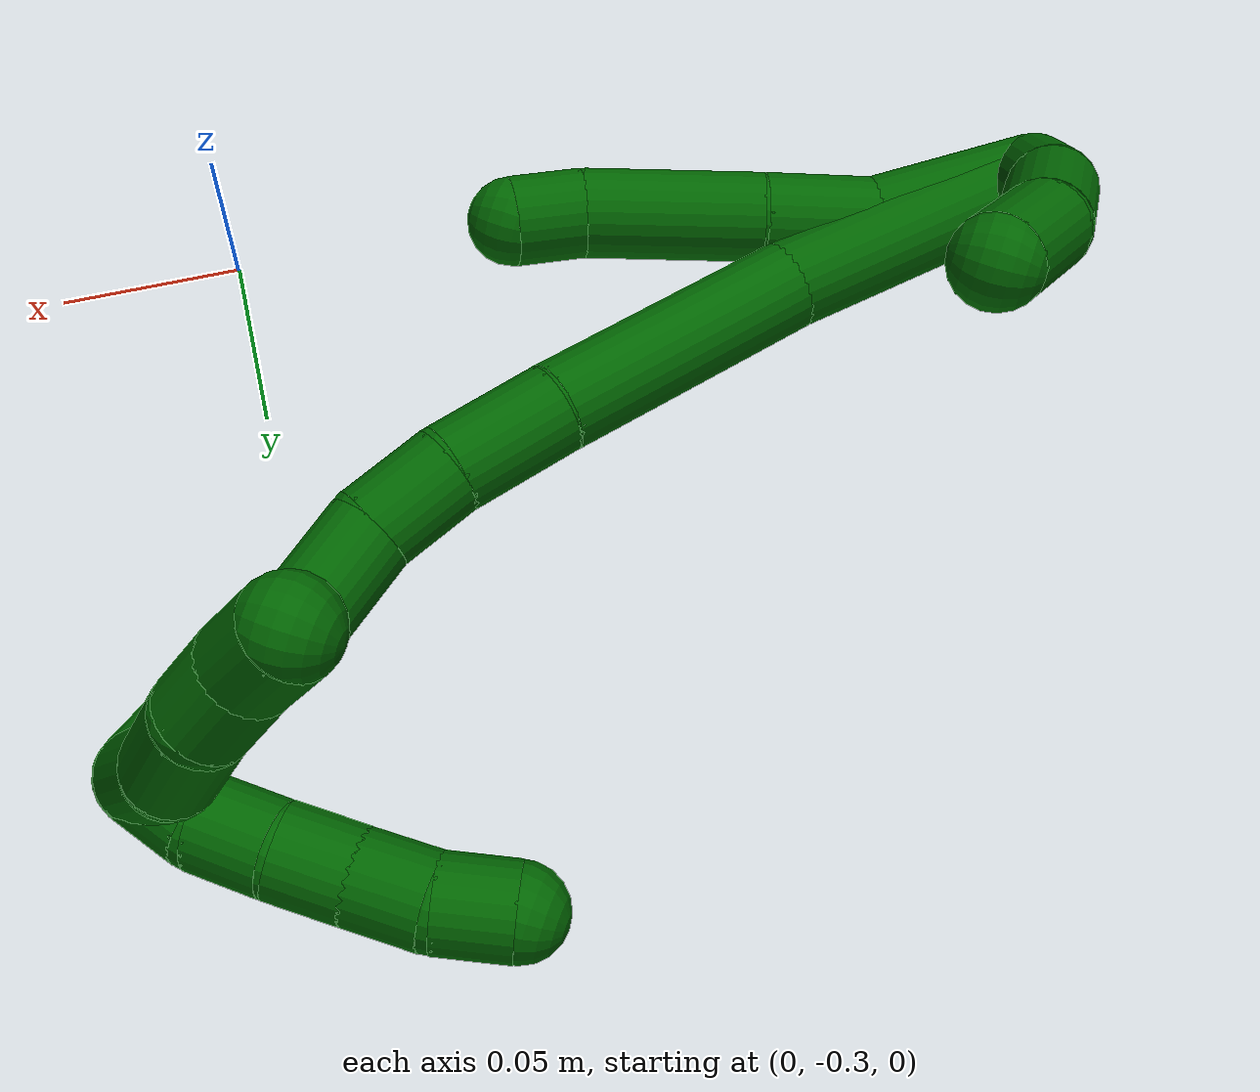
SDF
<sdf version="1.7">
 <world name="default">
  <model name="6">
   <static>0</static>
   <link name="6">
    <collision name="collision-cylinder-e_1_2_8">
     <pose>0.013785 -0.003809 0.019126 0.196598 0.615338 0.062652</pose>
     <geometry><cylinder><radius>0.0125</radius><length>0.047763</length></cylinder></geometry>
     <surface>
      <friction><ode><mu>1.16</mu><mu2>1.16</mu2><slip1>0</slip1><slip2>0</slip2></ode></friction>
      <contact><ode><kp>1e+06</kp><kd>1</kd><max_vel>0</max_vel><min_depth>0.001</min_depth></ode></contact>
     </surface>
    </collision>
    <visual name="visual-cylinder-e_1_2_8">
     <pose>0.013785 -0.003809 0.019126 0.196598 0.615338 0.062652</pose>
     <geometry><cylinder><radius>0.0125</radius><length>0.047763</length></cylinder></geometry>
     <material><ambient>0 0.392157 0.003922 1</ambient></material>
    </visual>
    <collision name="collision-cylinder-e_2_8_9">
     <pose>0.033226 -0.007453 0.052964 -0.011257 0.366955 -0.002089</pose>
     <geometry><cylinder><radius>0.0125</radius><length>0.031527</length></cylinder></geometry>
     <surface>
      <friction><ode><mu>1.16</mu><mu2>1.16</mu2><slip1>0</slip1><slip2>0</slip2></ode></friction>
      <contact><ode><kp>1e+06</kp><kd>1</kd><max_vel>0</max_vel><min_depth>0.001</min_depth></ode></contact>
     </surface>
    </collision>
    <visual name="visual-cylinder-e_2_8_9">
     <pose>0.033226 -0.007453 0.052964 -0.011257 0.366955 -0.002089</pose>
     <geometry><cylinder><radius>0.0125</radius><length>0.031527</length></cylinder></geometry>
     <material><ambient>0 0.392157 0.003922 1</ambient></material>
    </visual>
    <collision name="collision-cylinder-e_3_9_10">
     <pose>0.04677 -0.008749 0.09154 0.061189 0.318684 0.009836</pose>
     <geometry><cylinder><radius>0.0125</radius><length>0.050351</length></cylinder></geometry>
     <surface>
      <friction><ode><mu>1.16</mu><mu2>1.16</mu2><slip1>0</slip1><slip2>0</slip2></ode></friction>
      <contact><ode><kp>1e+06</kp><kd>1</kd><max_vel>0</max_vel><min_depth>0.001</min_depth></ode></contact>
     </surface>
    </collision>
    <visual name="visual-cylinder-e_3_9_10">
     <pose>0.04677 -0.008749 0.09154 0.061189 0.318684 0.009836</pose>
     <geometry><cylinder><radius>0.0125</radius><length>0.050351</length></cylinder></geometry>
     <material><ambient>0 0.392157 0.003922 1</ambient></material>
    </visual>
    <collision name="collision-cylinder-e_4_10_6">
     <pose>0.060021 -0.010442 0.124052 0.026702 0.554901 0.007605</pose>
     <geometry><cylinder><radius>0.0125</radius><length>0.020359</length></cylinder></geometry>
     <surface>
      <friction><ode><mu>1.16</mu><mu2>1.16</mu2><slip1>0</slip1><slip2>0</slip2></ode></friction>
      <contact><ode><kp>1e+06</kp><kd>1</kd><max_vel>0</max_vel><min_depth>0.001</min_depth></ode></contact>
     </surface>
    </collision>
    <visual name="visual-cylinder-e_4_10_6">
     <pose>0.060021 -0.010442 0.124052 0.026702 0.554901 0.007605</pose>
     <geometry><cylinder><radius>0.0125</radius><length>0.020359</length></cylinder></geometry>
     <material><ambient>0 0.392157 0.003922 1</ambient></material>
    </visual>
    <collision name="collision-cylinder-e_1_2_11">
     <pose>0.012114 0.009161 -0.002816 -1.86903 0.901474 -1.15989</pose>
     <geometry><cylinder><radius>0.0125</radius><length>0.030894</length></cylinder></geometry>
     <surface>
      <friction><ode><mu>1.16</mu><mu2>1.16</mu2><slip1>0</slip1><slip2>0</slip2></ode></friction>
      <contact><ode><kp>1e+06</kp><kd>1</kd><max_vel>0</max_vel><min_depth>0.001</min_depth></ode></contact>
     </surface>
    </collision>
    <visual name="visual-cylinder-e_1_2_11">
     <pose>0.012114 0.009161 -0.002816 -1.86903 0.901474 -1.15989</pose>
     <geometry><cylinder><radius>0.0125</radius><length>0.030894</length></cylinder></geometry>
     <material><ambient>0 0.392157 0.003922 1</ambient></material>
    </visual>
    <collision name="collision-cylinder-e_2_11_12">
     <pose>0.040582 0.026614 -0.005658 -1.57393 1.10155 -1.10434</pose>
     <geometry><cylinder><radius>0.0125</radius><length>0.036672</length></cylinder></geometry>
     <surface>
      <friction><ode><mu>1.16</mu><mu2>1.16</mu2><slip1>0</slip1><slip2>0</slip2></ode></friction>
      <contact><ode><kp>1e+06</kp><kd>1</kd><max_vel>0</max_vel><min_depth>0.001</min_depth></ode></contact>
     </surface>
    </collision>
    <visual name="visual-cylinder-e_2_11_12">
     <pose>0.040582 0.026614 -0.005658 -1.57393 1.10155 -1.10434</pose>
     <geometry><cylinder><radius>0.0125</radius><length>0.036672</length></cylinder></geometry>
     <material><ambient>0 0.392157 0.003922 1</ambient></material>
    </visual>
    <collision name="collision-cylinder-e_3_12_5">
     <pose>0.07152 0.040497 -0.00132 -0.908121 1.11811 -0.592727</pose>
     <geometry><cylinder><radius>0.0125</radius><length>0.032434</length></cylinder></geometry>
     <surface>
      <friction><ode><mu>1.16</mu><mu2>1.16</mu2><slip1>0</slip1><slip2>0</slip2></ode></friction>
      <contact><ode><kp>1e+06</kp><kd>1</kd><max_vel>0</max_vel><min_depth>0.001</min_depth></ode></contact>
     </surface>
    </collision>
    <visual name="visual-cylinder-e_3_12_5">
     <pose>0.07152 0.040497 -0.00132 -0.908121 1.11811 -0.592727</pose>
     <geometry><cylinder><radius>0.0125</radius><length>0.032434</length></cylinder></geometry>
     <material><ambient>0 0.392157 0.003922 1</ambient></material>
    </visual>
    <collision name="collision-cylinder-e_1_2_13">
     <pose>0.028169 -0.006351 0.027408 0.227702 0.786014 0.094738</pose>
     <geometry><cylinder><radius>0.0125</radius><length>0.079625</length></cylinder></geometry>
     <surface>
      <friction><ode><mu>1.16</mu><mu2>1.16</mu2><slip1>0</slip1><slip2>0</slip2></ode></friction>
      <contact><ode><kp>1e+06</kp><kd>1</kd><max_vel>0</max_vel><min_depth>0.001</min_depth></ode></contact>
     </surface>
    </collision>
    <visual name="visual-cylinder-e_1_2_13">
     <pose>0.028169 -0.006351 0.027408 0.227702 0.786014 0.094738</pose>
     <geometry><cylinder><radius>0.0125</radius><length>0.079625</length></cylinder></geometry>
     <material><ambient>0 0.392157 0.003922 1</ambient></material>
    </visual>
    <collision name="collision-cylinder-e_2_13_14">
     <pose>0.088426 -0.014266 0.077257 0.069598 0.959368 0.036216</pose>
     <geometry><cylinder><radius>0.0125</radius><length>0.078375</length></cylinder></geometry>
     <surface>
      <friction><ode><mu>1.16</mu><mu2>1.16</mu2><slip1>0</slip1><slip2>0</slip2></ode></friction>
      <contact><ode><kp>1e+06</kp><kd>1</kd><max_vel>0</max_vel><min_depth>0.001</min_depth></ode></contact>
     </surface>
    </collision>
    <visual name="visual-cylinder-e_2_13_14">
     <pose>0.088426 -0.014266 0.077257 0.069598 0.959368 0.036216</pose>
     <geometry><cylinder><radius>0.0125</radius><length>0.078375</length></cylinder></geometry>
     <material><ambient>0 0.392157 0.003922 1</ambient></material>
    </visual>
    <collision name="collision-cylinder-e_3_14_15">
     <pose>0.133827 -0.017934 0.109286 0.215922 0.935458 0.109381</pose>
     <geometry><cylinder><radius>0.0125</radius><length>0.033081</length></cylinder></geometry>
     <surface>
      <friction><ode><mu>1.16</mu><mu2>1.16</mu2><slip1>0</slip1><slip2>0</slip2></ode></friction>
      <contact><ode><kp>1e+06</kp><kd>1</kd><max_vel>0</max_vel><min_depth>0.001</min_depth></ode></contact>
     </surface>
    </collision>
    <visual name="visual-cylinder-e_3_14_15">
     <pose>0.133827 -0.017934 0.109286 0.215922 0.935458 0.109381</pose>
     <geometry><cylinder><radius>0.0125</radius><length>0.033081</length></cylinder></geometry>
     <material><ambient>0 0.392157 0.003922 1</ambient></material>
    </visual>
    <collision name="collision-cylinder-e_4_15_16">
     <pose>0.157796 -0.023222 0.125256 0.462936 0.980931 0.250396</pose>
     <geometry><cylinder><radius>0.0125</radius><length>0.025645</length></cylinder></geometry>
     <surface>
      <friction><ode><mu>1.16</mu><mu2>1.16</mu2><slip1>0</slip1><slip2>0</slip2></ode></friction>
      <contact><ode><kp>1e+06</kp><kd>1</kd><max_vel>0</max_vel><min_depth>0.001</min_depth></ode></contact>
     </surface>
    </collision>
    <visual name="visual-cylinder-e_4_15_16">
     <pose>0.157796 -0.023222 0.125256 0.462936 0.980931 0.250396</pose>
     <geometry><cylinder><radius>0.0125</radius><length>0.025645</length></cylinder></geometry>
     <material><ambient>0 0.392157 0.003922 1</ambient></material>
    </visual>
    <collision name="collision-cylinder-e_5_16_17">
     <pose>0.183372 -0.030823 0.135812 0.813382 1.18405 0.563857</pose>
     <geometry><cylinder><radius>0.0125</radius><length>0.032219</length></cylinder></geometry>
     <surface>
      <friction><ode><mu>1.16</mu><mu2>1.16</mu2><slip1>0</slip1><slip2>0</slip2></ode></friction>
      <contact><ode><kp>1e+06</kp><kd>1</kd><max_vel>0</max_vel><min_depth>0.001</min_depth></ode></contact>
     </surface>
    </collision>
    <visual name="visual-cylinder-e_5_16_17">
     <pose>0.183372 -0.030823 0.135812 0.813382 1.18405 0.563857</pose>
     <geometry><cylinder><radius>0.0125</radius><length>0.032219</length></cylinder></geometry>
     <material><ambient>0 0.392157 0.003922 1</ambient></material>
    </visual>
    <collision name="collision-cylinder-e_6_17_18">
     <pose>0.211511 -0.038509 0.145916 0.504195 1.09741 0.312361</pose>
     <geometry><cylinder><radius>0.0125</radius><length>0.029706</length></cylinder></geometry>
     <surface>
      <friction><ode><mu>1.16</mu><mu2>1.16</mu2><slip1>0</slip1><slip2>0</slip2></ode></friction>
      <contact><ode><kp>1e+06</kp><kd>1</kd><max_vel>0</max_vel><min_depth>0.001</min_depth></ode></contact>
     </surface>
    </collision>
    <visual name="visual-cylinder-e_6_17_18">
     <pose>0.211511 -0.038509 0.145916 0.504195 1.09741 0.312361</pose>
     <geometry><cylinder><radius>0.0125</radius><length>0.029706</length></cylinder></geometry>
     <material><ambient>0 0.392157 0.003922 1</ambient></material>
    </visual>
    <collision name="collision-cylinder-e_7_18_1">
     <pose>0.233834 -0.045526 0.155971 0.737173 1.0215 0.426278</pose>
     <geometry><cylinder><radius>0.0125</radius><length>0.021347</length></cylinder></geometry>
     <surface>
      <friction><ode><mu>1.16</mu><mu2>1.16</mu2><slip1>0</slip1><slip2>0</slip2></ode></friction>
      <contact><ode><kp>1e+06</kp><kd>1</kd><max_vel>0</max_vel><min_depth>0.001</min_depth></ode></contact>
     </surface>
    </collision>
    <visual name="visual-cylinder-e_7_18_1">
     <pose>0.233834 -0.045526 0.155971 0.737173 1.0215 0.426278</pose>
     <geometry><cylinder><radius>0.0125</radius><length>0.021347</length></cylinder></geometry>
     <material><ambient>0 0.392157 0.003922 1</ambient></material>
    </visual>
    <collision name="collision-cylinder-e_1_1_19">
     <pose>0.245914 -0.038427 0.153977 -2.0845 0.234612 -0.398259</pose>
     <geometry><cylinder><radius>0.0125</radius><length>0.025607</length></cylinder></geometry>
     <surface>
      <friction><ode><mu>1.16</mu><mu2>1.16</mu2><slip1>0</slip1><slip2>0</slip2></ode></friction>
      <contact><ode><kp>1e+06</kp><kd>1</kd><max_vel>0</max_vel><min_depth>0.001</min_depth></ode></contact>
     </surface>
    </collision>
    <visual name="visual-cylinder-e_1_1_19">
     <pose>0.245914 -0.038427 0.153977 -2.0845 0.234612 -0.398259</pose>
     <geometry><cylinder><radius>0.0125</radius><length>0.025607</length></cylinder></geometry>
     <material><ambient>0 0.392157 0.003922 1</ambient></material>
    </visual>
    <collision name="collision-cylinder-e_2_19_20">
     <pose>0.249426 -0.011704 0.14221 -1.91257 0.031773 -0.045022</pose>
     <geometry><cylinder><radius>0.0125</radius><length>0.033721</length></cylinder></geometry>
     <surface>
      <friction><ode><mu>1.16</mu><mu2>1.16</mu2><slip1>0</slip1><slip2>0</slip2></ode></friction>
      <contact><ode><kp>1e+06</kp><kd>1</kd><max_vel>0</max_vel><min_depth>0.001</min_depth></ode></contact>
     </surface>
    </collision>
    <visual name="visual-cylinder-e_2_19_20">
     <pose>0.249426 -0.011704 0.14221 -1.91257 0.031773 -0.045022</pose>
     <geometry><cylinder><radius>0.0125</radius><length>0.033721</length></cylinder></geometry>
     <material><ambient>0 0.392157 0.003922 1</ambient></material>
    </visual>
    <collision name="collision-cylinder-e_3_20_21">
     <pose>0.24712 0.01279 0.132097 -2.04883 -0.284854 0.463139</pose>
     <geometry><cylinder><radius>0.0125</radius><length>0.020226</length></cylinder></geometry>
     <surface>
      <friction><ode><mu>1.16</mu><mu2>1.16</mu2><slip1>0</slip1><slip2>0</slip2></ode></friction>
      <contact><ode><kp>1e+06</kp><kd>1</kd><max_vel>0</max_vel><min_depth>0.001</min_depth></ode></contact>
     </surface>
    </collision>
    <visual name="visual-cylinder-e_3_20_21">
     <pose>0.24712 0.01279 0.132097 -2.04883 -0.284854 0.463139</pose>
     <geometry><cylinder><radius>0.0125</radius><length>0.020226</length></cylinder></geometry>
     <material><ambient>0 0.392157 0.003922 1</ambient></material>
    </visual>
    <collision name="collision-cylinder-e_4_21_4">
     <pose>0.243292 0.030282 0.122652 -2.08219 -0.096589 0.164719</pose>
     <geometry><cylinder><radius>0.0125</radius><length>0.020447</length></cylinder></geometry>
     <surface>
      <friction><ode><mu>1.16</mu><mu2>1.16</mu2><slip1>0</slip1><slip2>0</slip2></ode></friction>
      <contact><ode><kp>1e+06</kp><kd>1</kd><max_vel>0</max_vel><min_depth>0.001</min_depth></ode></contact>
     </surface>
    </collision>
    <visual name="visual-cylinder-e_4_21_4">
     <pose>0.243292 0.030282 0.122652 -2.08219 -0.096589 0.164719</pose>
     <geometry><cylinder><radius>0.0125</radius><length>0.020447</length></cylinder></geometry>
     <material><ambient>0 0.392157 0.003922 1</ambient></material>
    </visual>
    <collision name="collision-cylinder-e_1_1_22">
     <pose>0.245927 -0.049014 0.150557 -3.11458 0.303559 -2.96544</pose>
     <geometry><cylinder><radius>0.0125</radius><length>0.02</length></cylinder></geometry>
     <surface>
      <friction><ode><mu>1.16</mu><mu2>1.16</mu2><slip1>0</slip1><slip2>0</slip2></ode></friction>
      <contact><ode><kp>1e+06</kp><kd>1</kd><max_vel>0</max_vel><min_depth>0.001</min_depth></ode></contact>
     </surface>
    </collision>
    <visual name="visual-cylinder-e_1_1_22">
     <pose>0.245927 -0.049014 0.150557 -3.11458 0.303559 -2.96544</pose>
     <geometry><cylinder><radius>0.0125</radius><length>0.02</length></cylinder></geometry>
     <material><ambient>0 0.392157 0.003922 1</ambient></material>
    </visual>
    <collision name="collision-cylinder-e_2_22_23">
     <pose>0.249408 -0.047978 0.13106 -3.06357 0.049229 -1.1255</pose>
     <geometry><cylinder><radius>0.0125</radius><length>0.02</length></cylinder></geometry>
     <surface>
      <friction><ode><mu>1.16</mu><mu2>1.16</mu2><slip1>0</slip1><slip2>0</slip2></ode></friction>
      <contact><ode><kp>1e+06</kp><kd>1</kd><max_vel>0</max_vel><min_depth>0.001</min_depth></ode></contact>
     </surface>
    </collision>
    <visual name="visual-cylinder-e_2_22_23">
     <pose>0.249408 -0.047978 0.13106 -3.06357 0.049229 -1.1255</pose>
     <geometry><cylinder><radius>0.0125</radius><length>0.02</length></cylinder></geometry>
     <material><ambient>0 0.392157 0.003922 1</ambient></material>
    </visual>
    <collision name="collision-cylinder-e_3_23_24">
     <pose>0.24945 -0.047691 0.111125 3.0924 -0.045085 -1.48367</pose>
     <geometry><cylinder><radius>0.0125</radius><length>0.02</length></cylinder></geometry>
     <surface>
      <friction><ode><mu>1.16</mu><mu2>1.16</mu2><slip1>0</slip1><slip2>0</slip2></ode></friction>
      <contact><ode><kp>1e+06</kp><kd>1</kd><max_vel>0</max_vel><min_depth>0.001</min_depth></ode></contact>
     </surface>
    </collision>
    <visual name="visual-cylinder-e_3_23_24">
     <pose>0.24945 -0.047691 0.111125 3.0924 -0.045085 -1.48367</pose>
     <geometry><cylinder><radius>0.0125</radius><length>0.02</length></cylinder></geometry>
     <material><ambient>0 0.392157 0.003922 1</ambient></material>
    </visual>
    <collision name="collision-cylinder-e_4_24_25">
     <pose>0.249037 -0.04739 0.091179 -3.06232 0.003745 -0.094373</pose>
     <geometry><cylinder><radius>0.0125</radius><length>0.02</length></cylinder></geometry>
     <surface>
      <friction><ode><mu>1.16</mu><mu2>1.16</mu2><slip1>0</slip1><slip2>0</slip2></ode></friction>
      <contact><ode><kp>1e+06</kp><kd>1</kd><max_vel>0</max_vel><min_depth>0.001</min_depth></ode></contact>
     </surface>
    </collision>
    <visual name="visual-cylinder-e_4_24_25">
     <pose>0.249037 -0.04739 0.091179 -3.06232 0.003745 -0.094373</pose>
     <geometry><cylinder><radius>0.0125</radius><length>0.02</length></cylinder></geometry>
     <material><ambient>0 0.392157 0.003922 1</ambient></material>
    </visual>
    <collision name="collision-cylinder-e_5_25_3">
     <pose>0.246751 -0.046162 0.071494 -3.09671 -0.234452 2.76493</pose>
     <geometry><cylinder><radius>0.0125</radius><length>0.02</length></cylinder></geometry>
     <surface>
      <friction><ode><mu>1.16</mu><mu2>1.16</mu2><slip1>0</slip1><slip2>0</slip2></ode></friction>
      <contact><ode><kp>1e+06</kp><kd>1</kd><max_vel>0</max_vel><min_depth>0.001</min_depth></ode></contact>
     </surface>
    </collision>
    <visual name="visual-cylinder-e_5_25_3">
     <pose>0.246751 -0.046162 0.071494 -3.09671 -0.234452 2.76493</pose>
     <geometry><cylinder><radius>0.0125</radius><length>0.02</length></cylinder></geometry>
     <material><ambient>0 0.392157 0.003922 1</ambient></material>
    </visual>
    <collision name="collision-sphere-3">
     <pose>0.244428 -0.045726 0.061777 0 -0 0</pose>
     <geometry><sphere><radius>0.0125</radius></sphere></geometry>
     <surface>
      <friction><ode><mu>1.16</mu><mu2>1.16</mu2><slip1>0</slip1><slip2>0</slip2></ode></friction>
      <contact><ode><kp>1e+06</kp><kd>1</kd><max_vel>0</max_vel><min_depth>0.001</min_depth></ode></contact>
     </surface>
    </collision>
    <visual name="visual-sphere-3">
     <pose>0.244428 -0.045726 0.061777 0 -0 0</pose>
     <geometry><sphere><radius>0.0125</radius></sphere></geometry>
     <material><ambient>0 0.392157 0.003922 1</ambient></material>
    </visual>
    <collision name="collision-sphere-25">
     <pose>0.249074 -0.046599 0.08121 0 -0 0</pose>
     <geometry><sphere><radius>0.0125</radius></sphere></geometry>
     <surface>
      <friction><ode><mu>1.16</mu><mu2>1.16</mu2><slip1>0</slip1><slip2>0</slip2></ode></friction>
      <contact><ode><kp>1e+06</kp><kd>1</kd><max_vel>0</max_vel><min_depth>0.001</min_depth></ode></contact>
     </surface>
    </collision>
    <visual name="visual-sphere-25">
     <pose>0.249074 -0.046599 0.08121 0 -0 0</pose>
     <geometry><sphere><radius>0.0125</radius></sphere></geometry>
     <material><ambient>0 0.392157 0.003922 1</ambient></material>
    </visual>
    <collision name="collision-sphere-24">
     <pose>0.248999 -0.048182 0.101147 0 -0 0</pose>
     <geometry><sphere><radius>0.0125</radius></sphere></geometry>
     <surface>
      <friction><ode><mu>1.16</mu><mu2>1.16</mu2><slip1>0</slip1><slip2>0</slip2></ode></friction>
      <contact><ode><kp>1e+06</kp><kd>1</kd><max_vel>0</max_vel><min_depth>0.001</min_depth></ode></contact>
     </surface>
    </collision>
    <visual name="visual-sphere-24">
     <pose>0.248999 -0.048182 0.101147 0 -0 0</pose>
     <geometry><sphere><radius>0.0125</radius></sphere></geometry>
     <material><ambient>0 0.392157 0.003922 1</ambient></material>
    </visual>
    <collision name="collision-sphere-23">
     <pose>0.2499 -0.0472 0.121103 0 -0 0</pose>
     <geometry><sphere><radius>0.0125</radius></sphere></geometry>
     <surface>
      <friction><ode><mu>1.16</mu><mu2>1.16</mu2><slip1>0</slip1><slip2>0</slip2></ode></friction>
      <contact><ode><kp>1e+06</kp><kd>1</kd><max_vel>0</max_vel><min_depth>0.001</min_depth></ode></contact>
     </surface>
    </collision>
    <visual name="visual-sphere-23">
     <pose>0.2499 -0.0472 0.121103 0 -0 0</pose>
     <geometry><sphere><radius>0.0125</radius></sphere></geometry>
     <material><ambient>0 0.392157 0.003922 1</ambient></material>
    </visual>
    <collision name="collision-sphere-22">
     <pose>0.248916 -0.048757 0.141018 0 -0 0</pose>
     <geometry><sphere><radius>0.0125</radius></sphere></geometry>
     <surface>
      <friction><ode><mu>1.16</mu><mu2>1.16</mu2><slip1>0</slip1><slip2>0</slip2></ode></friction>
      <contact><ode><kp>1e+06</kp><kd>1</kd><max_vel>0</max_vel><min_depth>0.001</min_depth></ode></contact>
     </surface>
    </collision>
    <visual name="visual-sphere-22">
     <pose>0.248916 -0.048757 0.141018 0 -0 0</pose>
     <geometry><sphere><radius>0.0125</radius></sphere></geometry>
     <material><ambient>0 0.392157 0.003922 1</ambient></material>
    </visual>
    <collision name="collision-sphere-4">
     <pose>0.242306 0.039156 0.117673 0 -0 0</pose>
     <geometry><sphere><radius>0.0125</radius></sphere></geometry>
     <surface>
      <friction><ode><mu>1.16</mu><mu2>1.16</mu2><slip1>0</slip1><slip2>0</slip2></ode></friction>
      <contact><ode><kp>1e+06</kp><kd>1</kd><max_vel>0</max_vel><min_depth>0.001</min_depth></ode></contact>
     </surface>
    </collision>
    <visual name="visual-sphere-4">
     <pose>0.242306 0.039156 0.117673 0 -0 0</pose>
     <geometry><sphere><radius>0.0125</radius></sphere></geometry>
     <material><ambient>0 0.392157 0.003922 1</ambient></material>
    </visual>
    <collision name="collision-sphere-21">
     <pose>0.244278 0.021408 0.127632 0 -0 0</pose>
     <geometry><sphere><radius>0.0125</radius></sphere></geometry>
     <surface>
      <friction><ode><mu>1.16</mu><mu2>1.16</mu2><slip1>0</slip1><slip2>0</slip2></ode></friction>
      <contact><ode><kp>1e+06</kp><kd>1</kd><max_vel>0</max_vel><min_depth>0.001</min_depth></ode></contact>
     </surface>
    </collision>
    <visual name="visual-sphere-21">
     <pose>0.244278 0.021408 0.127632 0 -0 0</pose>
     <geometry><sphere><radius>0.0125</radius></sphere></geometry>
     <material><ambient>0 0.392157 0.003922 1</ambient></material>
    </visual>
    <collision name="collision-sphere-20">
     <pose>0.249962 0.004173 0.136562 0 -0 0</pose>
     <geometry><sphere><radius>0.0125</radius></sphere></geometry>
     <surface>
      <friction><ode><mu>1.16</mu><mu2>1.16</mu2><slip1>0</slip1><slip2>0</slip2></ode></friction>
      <contact><ode><kp>1e+06</kp><kd>1</kd><max_vel>0</max_vel><min_depth>0.001</min_depth></ode></contact>
     </surface>
    </collision>
    <visual name="visual-sphere-20">
     <pose>0.249962 0.004173 0.136562 0 -0 0</pose>
     <geometry><sphere><radius>0.0125</radius></sphere></geometry>
     <material><ambient>0 0.392157 0.003922 1</ambient></material>
    </visual>
    <collision name="collision-sphere-11">
     <pose>0.024228 0.018322 -0.005632 0 -0 0</pose>
     <geometry><sphere><radius>0.0125</radius></sphere></geometry>
     <surface>
      <friction><ode><mu>1.16</mu><mu2>1.16</mu2><slip1>0</slip1><slip2>0</slip2></ode></friction>
      <contact><ode><kp>1e+06</kp><kd>1</kd><max_vel>0</max_vel><min_depth>0.001</min_depth></ode></contact>
     </surface>
    </collision>
    <visual name="visual-sphere-11">
     <pose>0.024228 0.018322 -0.005632 0 -0 0</pose>
     <geometry><sphere><radius>0.0125</radius></sphere></geometry>
     <material><ambient>0 0.392157 0.003922 1</ambient></material>
    </visual>
    <collision name="collision-sphere-6">
     <pose>0.065384 -0.010673 0.132701 0 -0 0</pose>
     <geometry><sphere><radius>0.0125</radius></sphere></geometry>
     <surface>
      <friction><ode><mu>1.16</mu><mu2>1.16</mu2><slip1>0</slip1><slip2>0</slip2></ode></friction>
      <contact><ode><kp>1e+06</kp><kd>1</kd><max_vel>0</max_vel><min_depth>0.001</min_depth></ode></contact>
     </surface>
    </collision>
    <visual name="visual-sphere-6">
     <pose>0.065384 -0.010673 0.132701 0 -0 0</pose>
     <geometry><sphere><radius>0.0125</radius></sphere></geometry>
     <material><ambient>0 0.392157 0.003922 1</ambient></material>
    </visual>
    <collision name="collision-sphere-10">
     <pose>0.054657 -0.010211 0.115403 0 -0 0</pose>
     <geometry><sphere><radius>0.0125</radius></sphere></geometry>
     <surface>
      <friction><ode><mu>1.16</mu><mu2>1.16</mu2><slip1>0</slip1><slip2>0</slip2></ode></friction>
      <contact><ode><kp>1e+06</kp><kd>1</kd><max_vel>0</max_vel><min_depth>0.001</min_depth></ode></contact>
     </surface>
    </collision>
    <visual name="visual-sphere-10">
     <pose>0.054657 -0.010211 0.115403 0 -0 0</pose>
     <geometry><sphere><radius>0.0125</radius></sphere></geometry>
     <material><ambient>0 0.392157 0.003922 1</ambient></material>
    </visual>
    <collision name="collision-sphere-9">
     <pose>0.038882 -0.007287 0.067677 0 -0 0</pose>
     <geometry><sphere><radius>0.0125</radius></sphere></geometry>
     <surface>
      <friction><ode><mu>1.16</mu><mu2>1.16</mu2><slip1>0</slip1><slip2>0</slip2></ode></friction>
      <contact><ode><kp>1e+06</kp><kd>1</kd><max_vel>0</max_vel><min_depth>0.001</min_depth></ode></contact>
     </surface>
    </collision>
    <visual name="visual-sphere-9">
     <pose>0.038882 -0.007287 0.067677 0 -0 0</pose>
     <geometry><sphere><radius>0.0125</radius></sphere></geometry>
     <material><ambient>0 0.392157 0.003922 1</ambient></material>
    </visual>
    <collision name="collision-sphere-2">
     <geometry><sphere><radius>0.0125</radius></sphere></geometry>
     <surface>
      <friction><ode><mu>1.16</mu><mu2>1.16</mu2><slip1>0</slip1><slip2>0</slip2></ode></friction>
      <contact><ode><kp>1e+06</kp><kd>1</kd><max_vel>0</max_vel><min_depth>0.001</min_depth></ode></contact>
     </surface>
    </collision>
    <visual name="visual-sphere-2">
     <geometry><sphere><radius>0.0125</radius></sphere></geometry>
     <material><ambient>0 0.392157 0.003922 1</ambient></material>
    </visual>
    <collision name="collision-sphere-19">
     <pose>0.248891 -0.027582 0.147858 0 -0 0</pose>
     <geometry><sphere><radius>0.0125</radius></sphere></geometry>
     <surface>
      <friction><ode><mu>1.16</mu><mu2>1.16</mu2><slip1>0</slip1><slip2>0</slip2></ode></friction>
      <contact><ode><kp>1e+06</kp><kd>1</kd><max_vel>0</max_vel><min_depth>0.001</min_depth></ode></contact>
     </surface>
    </collision>
    <visual name="visual-sphere-19">
     <pose>0.248891 -0.027582 0.147858 0 -0 0</pose>
     <geometry><sphere><radius>0.0125</radius></sphere></geometry>
     <material><ambient>0 0.392157 0.003922 1</ambient></material>
    </visual>
    <collision name="collision-sphere-8">
     <pose>0.027571 -0.007619 0.038251 0 -0 0</pose>
     <geometry><sphere><radius>0.0125</radius></sphere></geometry>
     <surface>
      <friction><ode><mu>1.16</mu><mu2>1.16</mu2><slip1>0</slip1><slip2>0</slip2></ode></friction>
      <contact><ode><kp>1e+06</kp><kd>1</kd><max_vel>0</max_vel><min_depth>0.001</min_depth></ode></contact>
     </surface>
    </collision>
    <visual name="visual-sphere-8">
     <pose>0.027571 -0.007619 0.038251 0 -0 0</pose>
     <geometry><sphere><radius>0.0125</radius></sphere></geometry>
     <material><ambient>0 0.392157 0.003922 1</ambient></material>
    </visual>
    <collision name="collision-sphere-12">
     <pose>0.056936 0.034905 -0.005684 0 -0 0</pose>
     <geometry><sphere><radius>0.0125</radius></sphere></geometry>
     <surface>
      <friction><ode><mu>1.16</mu><mu2>1.16</mu2><slip1>0</slip1><slip2>0</slip2></ode></friction>
      <contact><ode><kp>1e+06</kp><kd>1</kd><max_vel>0</max_vel><min_depth>0.001</min_depth></ode></contact>
     </surface>
    </collision>
    <visual name="visual-sphere-12">
     <pose>0.056936 0.034905 -0.005684 0 -0 0</pose>
     <geometry><sphere><radius>0.0125</radius></sphere></geometry>
     <material><ambient>0 0.392157 0.003922 1</ambient></material>
    </visual>
    <collision name="collision-sphere-5">
     <pose>0.086104 0.046089 0.003043 0 -0 0</pose>
     <geometry><sphere><radius>0.0125</radius></sphere></geometry>
     <surface>
      <friction><ode><mu>1.16</mu><mu2>1.16</mu2><slip1>0</slip1><slip2>0</slip2></ode></friction>
      <contact><ode><kp>1e+06</kp><kd>1</kd><max_vel>0</max_vel><min_depth>0.001</min_depth></ode></contact>
     </surface>
    </collision>
    <visual name="visual-sphere-5">
     <pose>0.086104 0.046089 0.003043 0 -0 0</pose>
     <geometry><sphere><radius>0.0125</radius></sphere></geometry>
     <material><ambient>0 0.392157 0.003922 1</ambient></material>
    </visual>
    <collision name="collision-sphere-13">
     <pose>0.056338 -0.012702 0.054817 0 -0 0</pose>
     <geometry><sphere><radius>0.0125</radius></sphere></geometry>
     <surface>
      <friction><ode><mu>1.16</mu><mu2>1.16</mu2><slip1>0</slip1><slip2>0</slip2></ode></friction>
      <contact><ode><kp>1e+06</kp><kd>1</kd><max_vel>0</max_vel><min_depth>0.001</min_depth></ode></contact>
     </surface>
    </collision>
    <visual name="visual-sphere-13">
     <pose>0.056338 -0.012702 0.054817 0 -0 0</pose>
     <geometry><sphere><radius>0.0125</radius></sphere></geometry>
     <material><ambient>0 0.392157 0.003922 1</ambient></material>
    </visual>
    <collision name="collision-sphere-14">
     <pose>0.120514 -0.015831 0.099698 0 -0 0</pose>
     <geometry><sphere><radius>0.0125</radius></sphere></geometry>
     <surface>
      <friction><ode><mu>1.16</mu><mu2>1.16</mu2><slip1>0</slip1><slip2>0</slip2></ode></friction>
      <contact><ode><kp>1e+06</kp><kd>1</kd><max_vel>0</max_vel><min_depth>0.001</min_depth></ode></contact>
     </surface>
    </collision>
    <visual name="visual-sphere-14">
     <pose>0.120514 -0.015831 0.099698 0 -0 0</pose>
     <geometry><sphere><radius>0.0125</radius></sphere></geometry>
     <material><ambient>0 0.392157 0.003922 1</ambient></material>
    </visual>
    <collision name="collision-sphere-15">
     <pose>0.14714 -0.020037 0.118874 0 -0 0</pose>
     <geometry><sphere><radius>0.0125</radius></sphere></geometry>
     <surface>
      <friction><ode><mu>1.16</mu><mu2>1.16</mu2><slip1>0</slip1><slip2>0</slip2></ode></friction>
      <contact><ode><kp>1e+06</kp><kd>1</kd><max_vel>0</max_vel><min_depth>0.001</min_depth></ode></contact>
     </surface>
    </collision>
    <visual name="visual-sphere-15">
     <pose>0.14714 -0.020037 0.118874 0 -0 0</pose>
     <geometry><sphere><radius>0.0125</radius></sphere></geometry>
     <material><ambient>0 0.392157 0.003922 1</ambient></material>
    </visual>
    <collision name="collision-sphere-16">
     <pose>0.168452 -0.026407 0.131638 0 -0 0</pose>
     <geometry><sphere><radius>0.0125</radius></sphere></geometry>
     <surface>
      <friction><ode><mu>1.16</mu><mu2>1.16</mu2><slip1>0</slip1><slip2>0</slip2></ode></friction>
      <contact><ode><kp>1e+06</kp><kd>1</kd><max_vel>0</max_vel><min_depth>0.001</min_depth></ode></contact>
     </surface>
    </collision>
    <visual name="visual-sphere-16">
     <pose>0.168452 -0.026407 0.131638 0 -0 0</pose>
     <geometry><sphere><radius>0.0125</radius></sphere></geometry>
     <material><ambient>0 0.392157 0.003922 1</ambient></material>
    </visual>
    <collision name="collision-sphere-17">
     <pose>0.198292 -0.035238 0.139987 0 -0 0</pose>
     <geometry><sphere><radius>0.0125</radius></sphere></geometry>
     <surface>
      <friction><ode><mu>1.16</mu><mu2>1.16</mu2><slip1>0</slip1><slip2>0</slip2></ode></friction>
      <contact><ode><kp>1e+06</kp><kd>1</kd><max_vel>0</max_vel><min_depth>0.001</min_depth></ode></contact>
     </surface>
    </collision>
    <visual name="visual-sphere-17">
     <pose>0.198292 -0.035238 0.139987 0 -0 0</pose>
     <geometry><sphere><radius>0.0125</radius></sphere></geometry>
     <material><ambient>0 0.392157 0.003922 1</ambient></material>
    </visual>
    <collision name="collision-sphere-18">
     <pose>0.224731 -0.04178 0.151845 0 -0 0</pose>
     <geometry><sphere><radius>0.0125</radius></sphere></geometry>
     <surface>
      <friction><ode><mu>1.16</mu><mu2>1.16</mu2><slip1>0</slip1><slip2>0</slip2></ode></friction>
      <contact><ode><kp>1e+06</kp><kd>1</kd><max_vel>0</max_vel><min_depth>0.001</min_depth></ode></contact>
     </surface>
    </collision>
    <visual name="visual-sphere-18">
     <pose>0.224731 -0.04178 0.151845 0 -0 0</pose>
     <geometry><sphere><radius>0.0125</radius></sphere></geometry>
     <material><ambient>0 0.392157 0.003922 1</ambient></material>
    </visual>
    <collision name="collision-sphere-1">
     <pose>0.242938 -0.049272 0.160097 0 -0 0</pose>
     <geometry><sphere><radius>0.0125</radius></sphere></geometry>
     <surface>
      <friction><ode><mu>1.16</mu><mu2>1.16</mu2><slip1>0</slip1><slip2>0</slip2></ode></friction>
      <contact><ode><kp>1e+06</kp><kd>1</kd><max_vel>0</max_vel><min_depth>0.001</min_depth></ode></contact>
     </surface>
    </collision>
    <visual name="visual-sphere-1">
     <pose>0.242938 -0.049272 0.160097 0 -0 0</pose>
     <geometry><sphere><radius>0.0125</radius></sphere></geometry>
     <material><ambient>0 0.392157 0.003922 1</ambient></material>
    </visual>
    <inertial>
     <pose>0.12505 -0.012913 0.082016 0 -0 0</pose>
     <mass>0.75</mass>
     <inertia>
      <ixx>0.000132</ixx>
      <ixy>0</ixy>
      <ixz>0</ixz>
      <iyy>0.000144</iyy>
      <iyz>0</iyz>
      <izz>-9.3e-05</izz>
     </inertia>
    </inertial>
   </link>
   <pose>-0.224656 -0.271652 0.014329 1.56682 -0.186109 0.997836</pose>
  </model>
 </world>
</sdf>
